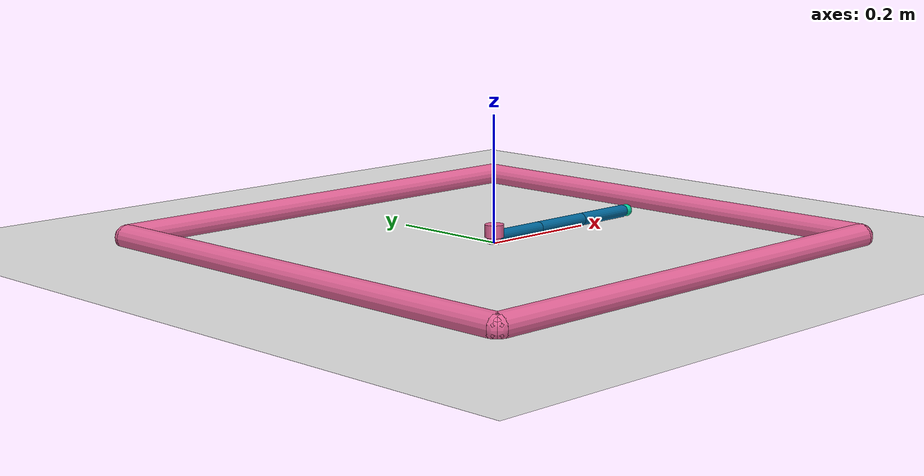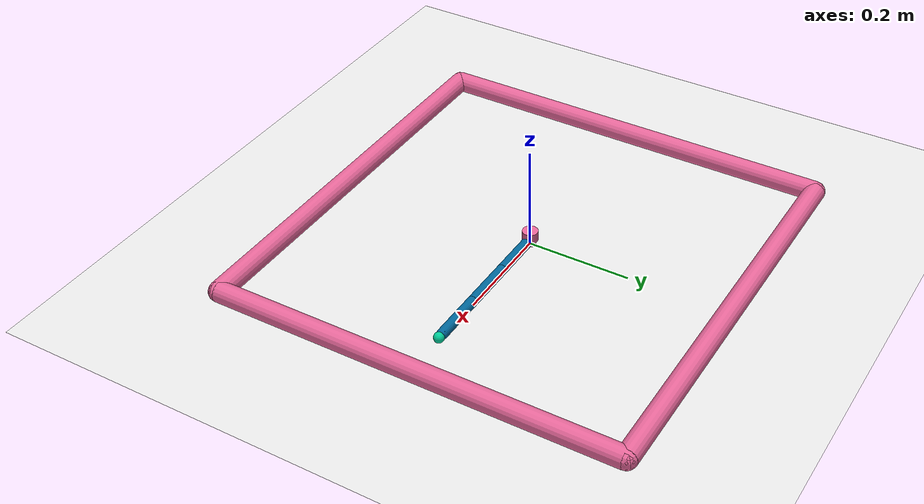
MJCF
<mujoco model="reacher">
	<compiler angle="radian" inertiafromgeom="true"/>
	<default>
		<joint armature="1" damping="75" limited="true"/>
		<geom contype="0" friction="1 0.1 0.1" rgba="0.7 0.7 0 1"/>
	</default>
	<option gravity="0 0 -9.81" integrator="RK4" timestep="0.01">
		<flag energy="enable"/>
	</option>

	<worldbody>
		<camera euler="0 0 0" fovy="50" name="top_cam" pos="0 0 1.0" />
		<!-- Arena -->
		<geom conaffinity="0" contype="0" name="ground" pos="0 0 0" rgba="0.9 0.9 0.9 1" size="1 1 10" type="plane"/>
		<geom conaffinity="0" fromto="-.4 -.4 .01 .4 -.4 .01" name="sideS" rgba="0.9 0.4 0.6 1" size=".02" type="capsule"/>
		<geom conaffinity="0" fromto=" .4 -.4 .01 .4  .4 .01" name="sideE" rgba="0.9 0.4 0.6 1" size=".02" type="capsule"/>
		<geom conaffinity="0" fromto="-.4  .4 .01 .4  .4 .01" name="sideN" rgba="0.9 0.4 0.6 1" size=".02" type="capsule"/>
		<geom conaffinity="0" fromto="-.4 -.4 .01 -.4 .4 .01" name="sideW" rgba="0.9 0.4 0.6 1" size=".02" type="capsule"/>

		<!-- Arm -->
		<geom conaffinity="0" contype="0" fromto="0 0 0 0 0 0.02" name="root" rgba="0.9 0.4 0.6 1" size=".011" type="cylinder"/>
		<body name="body0" pos="0 0 .01">
			<geom contype="0" conaffinity="1" fromto="0 0 0 0.1 0 0" name="link0" rgba="0.0 0.4 0.6 1" size=".01" type="capsule"/>
			<joint axis="0 0 1" limited="false" name="joint0" pos="0 0 0" type="hinge"/>
			<body name="body1" pos="0.1 0 0">
				<joint axis="0 0 1" limited="true" name="joint1" pos="0 0 0" range="-3.0 3.0" type="hinge"/>
				<geom contype="0" conaffinity="1" fromto="0 0 0 0.1 0 0" name="link1" rgba="0.0 0.4 0.6 1" size=".01" type="capsule"/>
				<body name="body2" pos="0.1 0 0">
					<joint axis="0 0 1" limited="true" name="joint2" pos="0 0 0" range="-3.0 3.0" type="hinge"/>
					<geom contype="0" conaffinity="1" fromto="0.0 0 0 0.1 0 0" name="link2" rgba="0.0 0.4 0.6 1" size=".01" type="capsule"/>
					<body name="fingertip" pos="0.11 0 0">
						<geom contype="0" conaffinity="1" name="fingertip" pos="0 0 0" rgba="0.0 0.8 0.6 1" size=".01" type="sphere"/>
					</body>
				</body>
			</body>
		</body>

		<!-- Obstacle -->
		<body name="obstacle" pos=".0 .0 .01">
			<joint armature="0" axis="1 0 0" damping="0" limited="true" name="obstacle_x" pos="0 0 0" range="-.30 .30" ref=".0" stiffness="0" type="slide"/>
			<joint armature="0" axis="0 1 0" damping="0" limited="true" name="obstacle_y" pos="0 0 0" range="-.30 .30" ref="-.0" stiffness="0" type="slide"/>
				<geom conaffinity="0" contype="0" fromto="0 0 0 0 0 0.02" name="obstacle" rgba="0.9 0.4 0.6 1" size=".015" type="cylinder"/>
		</body>

		<!-- Target -->
		<body name="target" pos=".0 .0 .01">
			<joint armature="0" axis="1 0 0" damping="0" limited="true" name="target_x" pos="0 0 0" range="-.30 .30" ref=".0" stiffness="0" type="slide"/>
			<joint armature="0" axis="0 1 0" damping="0" limited="true" name="target_y" pos="0 0 0" range="-.30 .30" ref="-.0" stiffness="0" type="slide"/>
			<geom conaffinity="0" contype="0" name="target" pos="0 0 0" rgba="0.9 0.2 0.2 1" size=".010" type="sphere"/>
		</body>

	</worldbody>
	<actuator>
		<motor ctrllimited="true" ctrlrange="-1.0 1.0" gear="200.0" joint="joint0"/>
		<motor ctrllimited="true" ctrlrange="-1.0 1.0" gear="200.0" joint="joint1"/>
		<motor ctrllimited="true" ctrlrange="-1.0 1.0" gear="200.0" joint="joint2"/>
	</actuator>
</mujoco>
